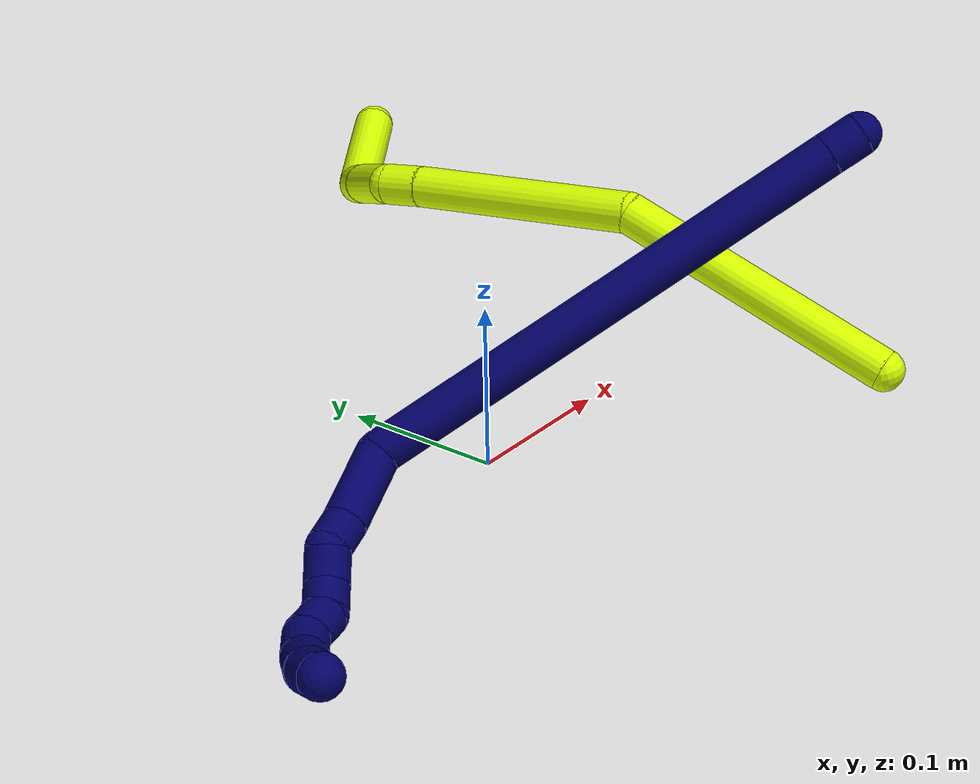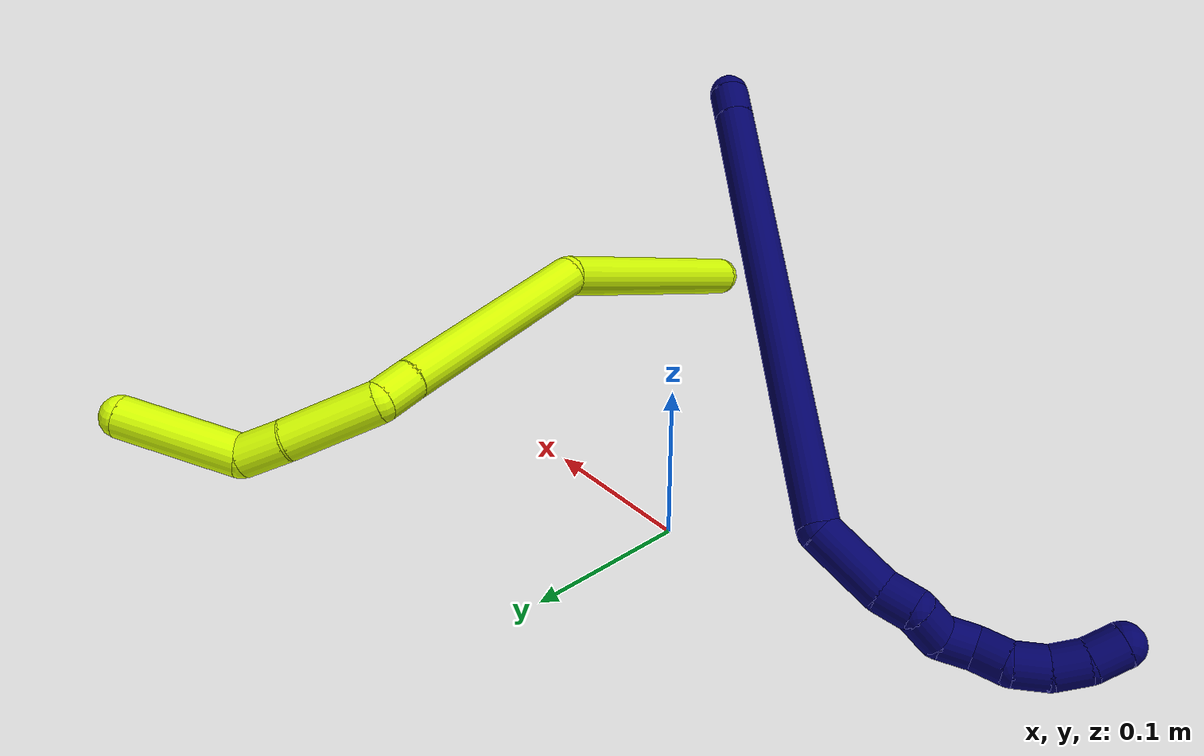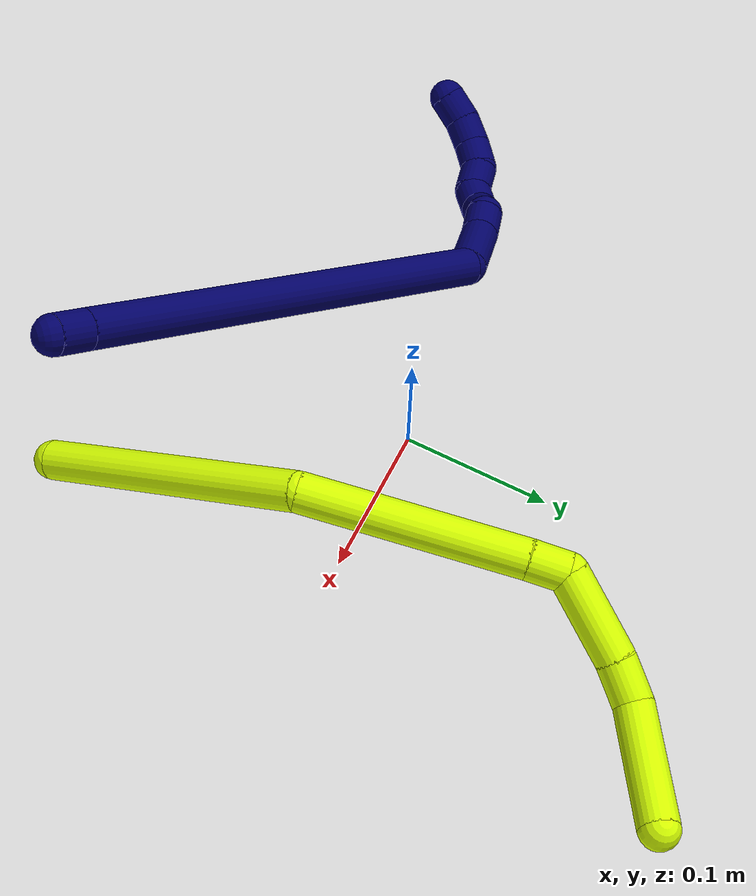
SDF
<sdf version="1.7">
 <world name="default">
  <model name="7">
   <static>0</static>
   <link name="7">
    <collision name="collision-cylinder-e_1_1_4">
     <pose>-0.002789 -0.000111 -0.010253 3.13073 -0.265539 -3.06027</pose>
     <geometry><cylinder><radius>0.0125</radius><length>0.021252</length></cylinder></geometry>
     <surface>
      <friction><ode><mu>1.16</mu><mu2>1.16</mu2><slip1>0</slip1><slip2>0</slip2></ode></friction>
      <contact><ode><kp>1e+06</kp><kd>1</kd><max_vel>0</max_vel><min_depth>0.001</min_depth></ode></contact>
     </surface>
    </collision>
    <visual name="visual-cylinder-e_1_1_4">
     <pose>-0.002789 -0.000111 -0.010253 3.13073 -0.265539 -3.06027</pose>
     <geometry><cylinder><radius>0.0125</radius><length>0.021252</length></cylinder></geometry>
     <material><ambient>0.003922 0 0.403922 1</ambient></material>
    </visual>
    <collision name="collision-cylinder-e_2_4_5">
     <pose>-0.044308 -0.002293 -0.161347 3.1269 -0.268335 -3.03282</pose>
     <geometry><cylinder><radius>0.0125</radius><length>0.292168</length></cylinder></geometry>
     <surface>
      <friction><ode><mu>1.16</mu><mu2>1.16</mu2><slip1>0</slip1><slip2>0</slip2></ode></friction>
      <contact><ode><kp>1e+06</kp><kd>1</kd><max_vel>0</max_vel><min_depth>0.001</min_depth></ode></contact>
     </surface>
    </collision>
    <visual name="visual-cylinder-e_2_4_5">
     <pose>-0.044308 -0.002293 -0.161347 3.1269 -0.268335 -3.03282</pose>
     <geometry><cylinder><radius>0.0125</radius><length>0.292168</length></cylinder></geometry>
     <material><ambient>0.003922 0 0.403922 1</ambient></material>
    </visual>
    <collision name="collision-cylinder-e_3_5_6">
     <pose>-0.097848 0.005883 -0.31636 -2.51564 -0.702652 1.69501</pose>
     <geometry><cylinder><radius>0.0125</radius><length>0.045831</length></cylinder></geometry>
     <surface>
      <friction><ode><mu>1.16</mu><mu2>1.16</mu2><slip1>0</slip1><slip2>0</slip2></ode></friction>
      <contact><ode><kp>1e+06</kp><kd>1</kd><max_vel>0</max_vel><min_depth>0.001</min_depth></ode></contact>
     </surface>
    </collision>
    <visual name="visual-cylinder-e_3_5_6">
     <pose>-0.097848 0.005883 -0.31636 -2.51564 -0.702652 1.69501</pose>
     <geometry><cylinder><radius>0.0125</radius><length>0.045831</length></cylinder></geometry>
     <material><ambient>0.003922 0 0.403922 1</ambient></material>
    </visual>
    <collision name="collision-cylinder-e_4_6_7">
     <pose>-0.11742 0.02307 -0.336327 -2.26639 -0.484821 0.972414</pose>
     <geometry><cylinder><radius>0.0125</radius><length>0.020441</length></cylinder></geometry>
     <surface>
      <friction><ode><mu>1.16</mu><mu2>1.16</mu2><slip1>0</slip1><slip2>0</slip2></ode></friction>
      <contact><ode><kp>1e+06</kp><kd>1</kd><max_vel>0</max_vel><min_depth>0.001</min_depth></ode></contact>
     </surface>
    </collision>
    <visual name="visual-cylinder-e_4_6_7">
     <pose>-0.11742 0.02307 -0.336327 -2.26639 -0.484821 0.972414</pose>
     <geometry><cylinder><radius>0.0125</radius><length>0.020441</length></cylinder></geometry>
     <material><ambient>0.003922 0 0.403922 1</ambient></material>
    </visual>
    <collision name="collision-cylinder-e_5_7_8">
     <pose>-0.131466 0.032295 -0.345421 -2.53624 -1.16279 2.25439</pose>
     <geometry><cylinder><radius>0.0125</radius><length>0.020225</length></cylinder></geometry>
     <surface>
      <friction><ode><mu>1.16</mu><mu2>1.16</mu2><slip1>0</slip1><slip2>0</slip2></ode></friction>
      <contact><ode><kp>1e+06</kp><kd>1</kd><max_vel>0</max_vel><min_depth>0.001</min_depth></ode></contact>
     </surface>
    </collision>
    <visual name="visual-cylinder-e_5_7_8">
     <pose>-0.131466 0.032295 -0.345421 -2.53624 -1.16279 2.25439</pose>
     <geometry><cylinder><radius>0.0125</radius><length>0.020225</length></cylinder></geometry>
     <material><ambient>0.003922 0 0.403922 1</ambient></material>
    </visual>
    <collision name="collision-cylinder-e_6_8_9">
     <pose>-0.147266 0.041885 -0.350892 -1.85962 -0.707465 0.919179</pose>
     <geometry><cylinder><radius>0.0125</radius><length>0.020059</length></cylinder></geometry>
     <surface>
      <friction><ode><mu>1.16</mu><mu2>1.16</mu2><slip1>0</slip1><slip2>0</slip2></ode></friction>
      <contact><ode><kp>1e+06</kp><kd>1</kd><max_vel>0</max_vel><min_depth>0.001</min_depth></ode></contact>
     </surface>
    </collision>
    <visual name="visual-cylinder-e_6_8_9">
     <pose>-0.147266 0.041885 -0.350892 -1.85962 -0.707465 0.919179</pose>
     <geometry><cylinder><radius>0.0125</radius><length>0.020059</length></cylinder></geometry>
     <material><ambient>0.003922 0 0.403922 1</ambient></material>
    </visual>
    <collision name="collision-cylinder-e_7_9_10">
     <pose>-0.15672 0.056848 -0.358808 -2.21456 -0.29758 0.582717</pose>
     <geometry><cylinder><radius>0.0125</radius><length>0.020024</length></cylinder></geometry>
     <surface>
      <friction><ode><mu>1.16</mu><mu2>1.16</mu2><slip1>0</slip1><slip2>0</slip2></ode></friction>
      <contact><ode><kp>1e+06</kp><kd>1</kd><max_vel>0</max_vel><min_depth>0.001</min_depth></ode></contact>
     </surface>
    </collision>
    <visual name="visual-cylinder-e_7_9_10">
     <pose>-0.15672 0.056848 -0.358808 -2.21456 -0.29758 0.582717</pose>
     <geometry><cylinder><radius>0.0125</radius><length>0.020024</length></cylinder></geometry>
     <material><ambient>0.003922 0 0.403922 1</ambient></material>
    </visual>
    <collision name="collision-cylinder-e_8_10_11">
     <pose>-0.164211 0.073278 -0.366055 -1.74035 -0.472984 0.556697</pose>
     <geometry><cylinder><radius>0.0125</radius><length>0.02</length></cylinder></geometry>
     <surface>
      <friction><ode><mu>1.16</mu><mu2>1.16</mu2><slip1>0</slip1><slip2>0</slip2></ode></friction>
      <contact><ode><kp>1e+06</kp><kd>1</kd><max_vel>0</max_vel><min_depth>0.001</min_depth></ode></contact>
     </surface>
    </collision>
    <visual name="visual-cylinder-e_8_10_11">
     <pose>-0.164211 0.073278 -0.366055 -1.74035 -0.472984 0.556697</pose>
     <geometry><cylinder><radius>0.0125</radius><length>0.02</length></cylinder></geometry>
     <material><ambient>0.003922 0 0.403922 1</ambient></material>
    </visual>
    <collision name="collision-cylinder-e_9_11_12">
     <pose>-0.17129 0.091709 -0.366938 -1.5068 -0.255066 0.239399</pose>
     <geometry><cylinder><radius>0.0125</radius><length>0.02</length></cylinder></geometry>
     <surface>
      <friction><ode><mu>1.16</mu><mu2>1.16</mu2><slip1>0</slip1><slip2>0</slip2></ode></friction>
      <contact><ode><kp>1e+06</kp><kd>1</kd><max_vel>0</max_vel><min_depth>0.001</min_depth></ode></contact>
     </surface>
    </collision>
    <visual name="visual-cylinder-e_9_11_12">
     <pose>-0.17129 0.091709 -0.366938 -1.5068 -0.255066 0.239399</pose>
     <geometry><cylinder><radius>0.0125</radius><length>0.02</length></cylinder></geometry>
     <material><ambient>0.003922 0 0.403922 1</ambient></material>
    </visual>
    <collision name="collision-cylinder-e_10_12_2">
     <pose>-0.175652 0.110694 -0.363219 -1.24988 -0.184945 0.133601</pose>
     <geometry><cylinder><radius>0.0125</radius><length>0.02</length></cylinder></geometry>
     <surface>
      <friction><ode><mu>1.16</mu><mu2>1.16</mu2><slip1>0</slip1><slip2>0</slip2></ode></friction>
      <contact><ode><kp>1e+06</kp><kd>1</kd><max_vel>0</max_vel><min_depth>0.001</min_depth></ode></contact>
     </surface>
    </collision>
    <visual name="visual-cylinder-e_10_12_2">
     <pose>-0.175652 0.110694 -0.363219 -1.24988 -0.184945 0.133601</pose>
     <geometry><cylinder><radius>0.0125</radius><length>0.02</length></cylinder></geometry>
     <material><ambient>0.003922 0 0.403922 1</ambient></material>
    </visual>
    <collision name="collision-sphere-2">
     <pose>-0.177491 0.120021 -0.360118 0 -0 0</pose>
     <geometry><sphere><radius>0.0125</radius></sphere></geometry>
     <surface>
      <friction><ode><mu>1.16</mu><mu2>1.16</mu2><slip1>0</slip1><slip2>0</slip2></ode></friction>
      <contact><ode><kp>1e+06</kp><kd>1</kd><max_vel>0</max_vel><min_depth>0.001</min_depth></ode></contact>
     </surface>
    </collision>
    <visual name="visual-sphere-2">
     <pose>-0.177491 0.120021 -0.360118 0 -0 0</pose>
     <geometry><sphere><radius>0.0125</radius></sphere></geometry>
     <material><ambient>0.003922 0 0.403922 1</ambient></material>
    </visual>
    <collision name="collision-sphere-12">
     <pose>-0.173813 0.101366 -0.36632 0 -0 0</pose>
     <geometry><sphere><radius>0.0125</radius></sphere></geometry>
     <surface>
      <friction><ode><mu>1.16</mu><mu2>1.16</mu2><slip1>0</slip1><slip2>0</slip2></ode></friction>
      <contact><ode><kp>1e+06</kp><kd>1</kd><max_vel>0</max_vel><min_depth>0.001</min_depth></ode></contact>
     </surface>
    </collision>
    <visual name="visual-sphere-12">
     <pose>-0.173813 0.101366 -0.36632 0 -0 0</pose>
     <geometry><sphere><radius>0.0125</radius></sphere></geometry>
     <material><ambient>0.003922 0 0.403922 1</ambient></material>
    </visual>
    <collision name="collision-sphere-11">
     <pose>-0.168767 0.082053 -0.367557 0 -0 0</pose>
     <geometry><sphere><radius>0.0125</radius></sphere></geometry>
     <surface>
      <friction><ode><mu>1.16</mu><mu2>1.16</mu2><slip1>0</slip1><slip2>0</slip2></ode></friction>
      <contact><ode><kp>1e+06</kp><kd>1</kd><max_vel>0</max_vel><min_depth>0.001</min_depth></ode></contact>
     </surface>
    </collision>
    <visual name="visual-sphere-11">
     <pose>-0.168767 0.082053 -0.367557 0 -0 0</pose>
     <geometry><sphere><radius>0.0125</radius></sphere></geometry>
     <material><ambient>0.003922 0 0.403922 1</ambient></material>
    </visual>
    <collision name="collision-sphere-10">
     <pose>-0.159656 0.064504 -0.364553 0 -0 0</pose>
     <geometry><sphere><radius>0.0125</radius></sphere></geometry>
     <surface>
      <friction><ode><mu>1.16</mu><mu2>1.16</mu2><slip1>0</slip1><slip2>0</slip2></ode></friction>
      <contact><ode><kp>1e+06</kp><kd>1</kd><max_vel>0</max_vel><min_depth>0.001</min_depth></ode></contact>
     </surface>
    </collision>
    <visual name="visual-sphere-10">
     <pose>-0.159656 0.064504 -0.364553 0 -0 0</pose>
     <geometry><sphere><radius>0.0125</radius></sphere></geometry>
     <material><ambient>0.003922 0 0.403922 1</ambient></material>
    </visual>
    <collision name="collision-sphere-9">
     <pose>-0.153785 0.049192 -0.353063 0 -0 0</pose>
     <geometry><sphere><radius>0.0125</radius></sphere></geometry>
     <surface>
      <friction><ode><mu>1.16</mu><mu2>1.16</mu2><slip1>0</slip1><slip2>0</slip2></ode></friction>
      <contact><ode><kp>1e+06</kp><kd>1</kd><max_vel>0</max_vel><min_depth>0.001</min_depth></ode></contact>
     </surface>
    </collision>
    <visual name="visual-sphere-9">
     <pose>-0.153785 0.049192 -0.353063 0 -0 0</pose>
     <geometry><sphere><radius>0.0125</radius></sphere></geometry>
     <material><ambient>0.003922 0 0.403922 1</ambient></material>
    </visual>
    <collision name="collision-sphere-4">
     <pose>-0.005577 -0.000223 -0.020506 0 -0 0</pose>
     <geometry><sphere><radius>0.0125</radius></sphere></geometry>
     <surface>
      <friction><ode><mu>1.16</mu><mu2>1.16</mu2><slip1>0</slip1><slip2>0</slip2></ode></friction>
      <contact><ode><kp>1e+06</kp><kd>1</kd><max_vel>0</max_vel><min_depth>0.001</min_depth></ode></contact>
     </surface>
    </collision>
    <visual name="visual-sphere-4">
     <pose>-0.005577 -0.000223 -0.020506 0 -0 0</pose>
     <geometry><sphere><radius>0.0125</radius></sphere></geometry>
     <material><ambient>0.003922 0 0.403922 1</ambient></material>
    </visual>
    <collision name="collision-sphere-1">
     <geometry><sphere><radius>0.0125</radius></sphere></geometry>
     <surface>
      <friction><ode><mu>1.16</mu><mu2>1.16</mu2><slip1>0</slip1><slip2>0</slip2></ode></friction>
      <contact><ode><kp>1e+06</kp><kd>1</kd><max_vel>0</max_vel><min_depth>0.001</min_depth></ode></contact>
     </surface>
    </collision>
    <visual name="visual-sphere-1">
     <geometry><sphere><radius>0.0125</radius></sphere></geometry>
     <material><ambient>0.003922 0 0.403922 1</ambient></material>
    </visual>
    <collision name="collision-sphere-8">
     <pose>-0.140748 0.034578 -0.348721 0 -0 0</pose>
     <geometry><sphere><radius>0.0125</radius></sphere></geometry>
     <surface>
      <friction><ode><mu>1.16</mu><mu2>1.16</mu2><slip1>0</slip1><slip2>0</slip2></ode></friction>
      <contact><ode><kp>1e+06</kp><kd>1</kd><max_vel>0</max_vel><min_depth>0.001</min_depth></ode></contact>
     </surface>
    </collision>
    <visual name="visual-sphere-8">
     <pose>-0.140748 0.034578 -0.348721 0 -0 0</pose>
     <geometry><sphere><radius>0.0125</radius></sphere></geometry>
     <material><ambient>0.003922 0 0.403922 1</ambient></material>
    </visual>
    <collision name="collision-sphere-5">
     <pose>-0.083039 -0.004363 -0.302188 0 -0 0</pose>
     <geometry><sphere><radius>0.0125</radius></sphere></geometry>
     <surface>
      <friction><ode><mu>1.16</mu><mu2>1.16</mu2><slip1>0</slip1><slip2>0</slip2></ode></friction>
      <contact><ode><kp>1e+06</kp><kd>1</kd><max_vel>0</max_vel><min_depth>0.001</min_depth></ode></contact>
     </surface>
    </collision>
    <visual name="visual-sphere-5">
     <pose>-0.083039 -0.004363 -0.302188 0 -0 0</pose>
     <geometry><sphere><radius>0.0125</radius></sphere></geometry>
     <material><ambient>0.003922 0 0.403922 1</ambient></material>
    </visual>
    <collision name="collision-sphere-6">
     <pose>-0.112657 0.016128 -0.330532 0 -0 0</pose>
     <geometry><sphere><radius>0.0125</radius></sphere></geometry>
     <surface>
      <friction><ode><mu>1.16</mu><mu2>1.16</mu2><slip1>0</slip1><slip2>0</slip2></ode></friction>
      <contact><ode><kp>1e+06</kp><kd>1</kd><max_vel>0</max_vel><min_depth>0.001</min_depth></ode></contact>
     </surface>
    </collision>
    <visual name="visual-sphere-6">
     <pose>-0.112657 0.016128 -0.330532 0 -0 0</pose>
     <geometry><sphere><radius>0.0125</radius></sphere></geometry>
     <material><ambient>0.003922 0 0.403922 1</ambient></material>
    </visual>
    <collision name="collision-sphere-7">
     <pose>-0.122183 0.030011 -0.342122 0 -0 0</pose>
     <geometry><sphere><radius>0.0125</radius></sphere></geometry>
     <surface>
      <friction><ode><mu>1.16</mu><mu2>1.16</mu2><slip1>0</slip1><slip2>0</slip2></ode></friction>
      <contact><ode><kp>1e+06</kp><kd>1</kd><max_vel>0</max_vel><min_depth>0.001</min_depth></ode></contact>
     </surface>
    </collision>
    <visual name="visual-sphere-7">
     <pose>-0.122183 0.030011 -0.342122 0 -0 0</pose>
     <geometry><sphere><radius>0.0125</radius></sphere></geometry>
     <material><ambient>0.003922 0 0.403922 1</ambient></material>
    </visual>
    <inertial>
     <pose>-0.077727 0.016428 -0.223732 0 -0 0</pose>
     <mass>0.5</mass>
     <inertia>
      <ixx>-0.00222</ixx>
      <ixy>0</ixy>
      <ixz>0</ixz>
      <iyy>0.001889</iyy>
      <iyz>0</iyz>
      <izz>0.000555</izz>
     </inertia>
    </inertial>
   </link>
   <pose>0.124613 -0.164147 0.20473 1.1022 -0.997146 1.24953</pose>
  </model>
  <model name="15">
   <static>0</static>
   <link name="15">
    <collision name="collision-cylinder-e_1_1_4">
     <pose>0.046674 0.059717 0.045171 -0.923192 0.557404 -0.282784</pose>
     <geometry><cylinder><radius>0.0125</radius><length>0.176465</length></cylinder></geometry>
     <surface>
      <friction><ode><mu>1.16</mu><mu2>1.16</mu2><slip1>0</slip1><slip2>0</slip2></ode></friction>
      <contact><ode><kp>1e+06</kp><kd>1</kd><max_vel>0</max_vel><min_depth>0.001</min_depth></ode></contact>
     </surface>
    </collision>
    <visual name="visual-cylinder-e_1_1_4">
     <pose>0.046674 0.059717 0.045171 -0.923192 0.557404 -0.282784</pose>
     <geometry><cylinder><radius>0.0125</radius><length>0.176465</length></cylinder></geometry>
     <material><ambient>0.835294 1 0 1</ambient></material>
    </visual>
    <collision name="collision-cylinder-e_2_4_5">
     <pose>0.130244 0.178119 0.097734 -1.44551 0.557734 -0.494712</pose>
     <geometry><cylinder><radius>0.0125</radius><length>0.139428</length></cylinder></geometry>
     <surface>
      <friction><ode><mu>1.16</mu><mu2>1.16</mu2><slip1>0</slip1><slip2>0</slip2></ode></friction>
      <contact><ode><kp>1e+06</kp><kd>1</kd><max_vel>0</max_vel><min_depth>0.001</min_depth></ode></contact>
     </surface>
    </collision>
    <visual name="visual-cylinder-e_2_4_5">
     <pose>0.130244 0.178119 0.097734 -1.44551 0.557734 -0.494712</pose>
     <geometry><cylinder><radius>0.0125</radius><length>0.139428</length></cylinder></geometry>
     <material><ambient>0.835294 1 0 1</ambient></material>
    </visual>
    <collision name="collision-cylinder-e_3_5_6">
     <pose>0.173635 0.246841 0.105701 -1.51359 0.573515 -0.543197</pose>
     <geometry><cylinder><radius>0.0125</radius><length>0.023936</length></cylinder></geometry>
     <surface>
      <friction><ode><mu>1.16</mu><mu2>1.16</mu2><slip1>0</slip1><slip2>0</slip2></ode></friction>
      <contact><ode><kp>1e+06</kp><kd>1</kd><max_vel>0</max_vel><min_depth>0.001</min_depth></ode></contact>
     </surface>
    </collision>
    <visual name="visual-cylinder-e_3_5_6">
     <pose>0.173635 0.246841 0.105701 -1.51359 0.573515 -0.543197</pose>
     <geometry><cylinder><radius>0.0125</radius><length>0.023936</length></cylinder></geometry>
     <material><ambient>0.835294 1 0 1</ambient></material>
    </visual>
    <collision name="collision-cylinder-e_4_6_7">
     <pose>0.20543 0.265685 0.097297 -2.36581 1.10947 -1.97568</pose>
     <geometry><cylinder><radius>0.0125</radius><length>0.056509</length></cylinder></geometry>
     <surface>
      <friction><ode><mu>1.16</mu><mu2>1.16</mu2><slip1>0</slip1><slip2>0</slip2></ode></friction>
      <contact><ode><kp>1e+06</kp><kd>1</kd><max_vel>0</max_vel><min_depth>0.001</min_depth></ode></contact>
     </surface>
    </collision>
    <visual name="visual-cylinder-e_4_6_7">
     <pose>0.20543 0.265685 0.097297 -2.36581 1.10947 -1.97568</pose>
     <geometry><cylinder><radius>0.0125</radius><length>0.056509</length></cylinder></geometry>
     <material><ambient>0.835294 1 0 1</ambient></material>
    </visual>
    <collision name="collision-cylinder-e_5_7_8">
     <pose>0.24331 0.277241 0.08326 -2.64392 1.14158 -2.38792</pose>
     <geometry><cylinder><radius>0.0125</radius><length>0.027669</length></cylinder></geometry>
     <surface>
      <friction><ode><mu>1.16</mu><mu2>1.16</mu2><slip1>0</slip1><slip2>0</slip2></ode></friction>
      <contact><ode><kp>1e+06</kp><kd>1</kd><max_vel>0</max_vel><min_depth>0.001</min_depth></ode></contact>
     </surface>
    </collision>
    <visual name="visual-cylinder-e_5_7_8">
     <pose>0.24331 0.277241 0.08326 -2.64392 1.14158 -2.38792</pose>
     <geometry><cylinder><radius>0.0125</radius><length>0.027669</length></cylinder></geometry>
     <material><ambient>0.835294 1 0 1</ambient></material>
    </visual>
    <collision name="collision-cylinder-e_6_8_2">
     <pose>0.292887 0.272266 0.082121 1.10109 1.34084 0.905982</pose>
     <geometry><cylinder><radius>0.0125</radius><length>0.075994</length></cylinder></geometry>
     <surface>
      <friction><ode><mu>1.16</mu><mu2>1.16</mu2><slip1>0</slip1><slip2>0</slip2></ode></friction>
      <contact><ode><kp>1e+06</kp><kd>1</kd><max_vel>0</max_vel><min_depth>0.001</min_depth></ode></contact>
     </surface>
    </collision>
    <visual name="visual-cylinder-e_6_8_2">
     <pose>0.292887 0.272266 0.082121 1.10109 1.34084 0.905982</pose>
     <geometry><cylinder><radius>0.0125</radius><length>0.075994</length></cylinder></geometry>
     <material><ambient>0.835294 1 0 1</ambient></material>
    </visual>
    <collision name="collision-sphere-2">
     <pose>0.329883 0.264543 0.086041 0 -0 0</pose>
     <geometry><sphere><radius>0.0125</radius></sphere></geometry>
     <surface>
      <friction><ode><mu>1.16</mu><mu2>1.16</mu2><slip1>0</slip1><slip2>0</slip2></ode></friction>
      <contact><ode><kp>1e+06</kp><kd>1</kd><max_vel>0</max_vel><min_depth>0.001</min_depth></ode></contact>
     </surface>
    </collision>
    <visual name="visual-sphere-2">
     <pose>0.329883 0.264543 0.086041 0 -0 0</pose>
     <geometry><sphere><radius>0.0125</radius></sphere></geometry>
     <material><ambient>0.835294 1 0 1</ambient></material>
    </visual>
    <collision name="collision-sphere-4">
     <pose>0.093347 0.119433 0.090343 0 -0 0</pose>
     <geometry><sphere><radius>0.0125</radius></sphere></geometry>
     <surface>
      <friction><ode><mu>1.16</mu><mu2>1.16</mu2><slip1>0</slip1><slip2>0</slip2></ode></friction>
      <contact><ode><kp>1e+06</kp><kd>1</kd><max_vel>0</max_vel><min_depth>0.001</min_depth></ode></contact>
     </surface>
    </collision>
    <visual name="visual-sphere-4">
     <pose>0.093347 0.119433 0.090343 0 -0 0</pose>
     <geometry><sphere><radius>0.0125</radius></sphere></geometry>
     <material><ambient>0.835294 1 0 1</ambient></material>
    </visual>
    <collision name="collision-sphere-1">
     <geometry><sphere><radius>0.0125</radius></sphere></geometry>
     <surface>
      <friction><ode><mu>1.16</mu><mu2>1.16</mu2><slip1>0</slip1><slip2>0</slip2></ode></friction>
      <contact><ode><kp>1e+06</kp><kd>1</kd><max_vel>0</max_vel><min_depth>0.001</min_depth></ode></contact>
     </surface>
    </collision>
    <visual name="visual-sphere-1">
     <geometry><sphere><radius>0.0125</radius></sphere></geometry>
     <material><ambient>0.835294 1 0 1</ambient></material>
    </visual>
    <collision name="collision-sphere-8">
     <pose>0.25589 0.279989 0.078201 0 -0 0</pose>
     <geometry><sphere><radius>0.0125</radius></sphere></geometry>
     <surface>
      <friction><ode><mu>1.16</mu><mu2>1.16</mu2><slip1>0</slip1><slip2>0</slip2></ode></friction>
      <contact><ode><kp>1e+06</kp><kd>1</kd><max_vel>0</max_vel><min_depth>0.001</min_depth></ode></contact>
     </surface>
    </collision>
    <visual name="visual-sphere-8">
     <pose>0.25589 0.279989 0.078201 0 -0 0</pose>
     <geometry><sphere><radius>0.0125</radius></sphere></geometry>
     <material><ambient>0.835294 1 0 1</ambient></material>
    </visual>
    <collision name="collision-sphere-5">
     <pose>0.167141 0.236804 0.105126 0 -0 0</pose>
     <geometry><sphere><radius>0.0125</radius></sphere></geometry>
     <surface>
      <friction><ode><mu>1.16</mu><mu2>1.16</mu2><slip1>0</slip1><slip2>0</slip2></ode></friction>
      <contact><ode><kp>1e+06</kp><kd>1</kd><max_vel>0</max_vel><min_depth>0.001</min_depth></ode></contact>
     </surface>
    </collision>
    <visual name="visual-sphere-5">
     <pose>0.167141 0.236804 0.105126 0 -0 0</pose>
     <geometry><sphere><radius>0.0125</radius></sphere></geometry>
     <material><ambient>0.835294 1 0 1</ambient></material>
    </visual>
    <collision name="collision-sphere-6">
     <pose>0.180129 0.256877 0.106275 0 -0 0</pose>
     <geometry><sphere><radius>0.0125</radius></sphere></geometry>
     <surface>
      <friction><ode><mu>1.16</mu><mu2>1.16</mu2><slip1>0</slip1><slip2>0</slip2></ode></friction>
      <contact><ode><kp>1e+06</kp><kd>1</kd><max_vel>0</max_vel><min_depth>0.001</min_depth></ode></contact>
     </surface>
    </collision>
    <visual name="visual-sphere-6">
     <pose>0.180129 0.256877 0.106275 0 -0 0</pose>
     <geometry><sphere><radius>0.0125</radius></sphere></geometry>
     <material><ambient>0.835294 1 0 1</ambient></material>
    </visual>
    <collision name="collision-sphere-7">
     <pose>0.230731 0.274492 0.088319 0 -0 0</pose>
     <geometry><sphere><radius>0.0125</radius></sphere></geometry>
     <surface>
      <friction><ode><mu>1.16</mu><mu2>1.16</mu2><slip1>0</slip1><slip2>0</slip2></ode></friction>
      <contact><ode><kp>1e+06</kp><kd>1</kd><max_vel>0</max_vel><min_depth>0.001</min_depth></ode></contact>
     </surface>
    </collision>
    <visual name="visual-sphere-7">
     <pose>0.230731 0.274492 0.088319 0 -0 0</pose>
     <geometry><sphere><radius>0.0125</radius></sphere></geometry>
     <material><ambient>0.835294 1 0 1</ambient></material>
    </visual>
    <inertial>
     <pose>0.142301 0.169312 0.076341 0 -0 0</pose>
     <mass>0.5</mass>
     <inertia>
      <ixx>0.000376</ixx>
      <ixy>0</ixy>
      <ixz>0</ixz>
      <iyy>0.000279</iyy>
      <iyz>0</iyz>
      <izz>-0.000928</izz>
     </inertia>
    </inertial>
   </link>
   <pose>0.140492 -0.179717 0.058037 -0.206626 -0.017995 0.752375</pose>
  </model>
 </world>
</sdf>
